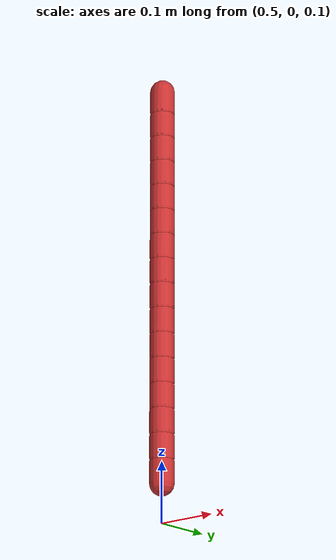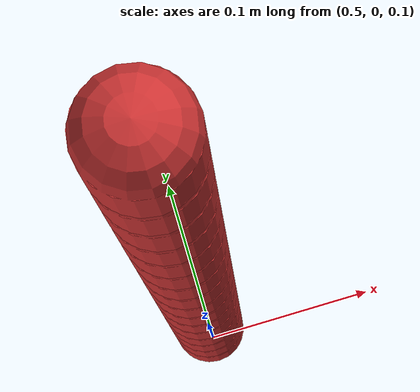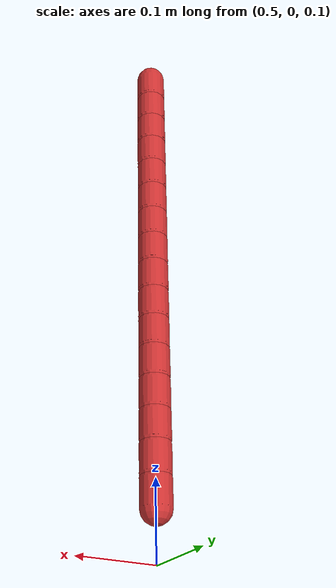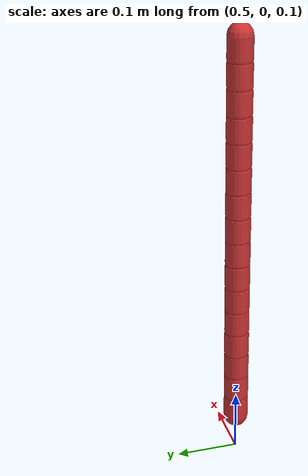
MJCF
<mujoco model="rope">

	<!-- Default settings for the model (size of capsule = 0.185) 0.035125, pos 0.0825-->
	<default>
		<default class="rope">
			<geom type="capsule" size="0.02 0.0175625" density="1140" friction="0.5" /> <!--density of Nylon-->
			<joint damping="0.1" stiffness="0.2" armature="0.01" />
		</default>
	</default>

	<!-- World body -->
	<worldbody>
		<!-- Fixed base of the DLO chain (no joint, so it remains in place) -->
		<body name="segment_0" pos="0.5 0 0.8" childclass="rope">
			<geom name="geom_0" type="capsule" rgba="0.8 0.2 0.2 1"/>
			<joint name="joint_0" type="ball" pos="0 0 0.0175625" />
			<!-- This first segment is fixed in space without a joint -->
			<!-- Chain structure for the wire with ball joints -->
			<body name="segment_1" pos="0 0 -0.04125">
				<geom name="geom_1" type="capsule" rgba="0.8 0.2 0.2 1" />
				<joint name="joint_1" type="ball" pos="0 0 0.0175625" />
				<body name="segment_2" pos="0 0 -0.04125">
					<geom name="geom_2" type="capsule" rgba="0.8 0.2 0.2 1" />
					<joint name="joint_2" type="ball" pos="0 0 0.0175625" />
					<body name="segment_3" pos="0 0 -0.04125">
						<geom name="geom_3" type="capsule" rgba="0.8 0.2 0.2 1" />
						<joint name="joint_3" type="ball" pos="0 0 0.0175625" />
						<body name="segment_4" pos="0 0 -0.04125">
							<geom name="geom_4" type="capsule" rgba="0.8 0.2 0.2 1" />
							<joint name="joint_4" type="ball" pos="0 0 0.0175625" />
							<body name="segment_5" pos="0 0 -0.04125">
								<geom name="geom_5" type="capsule" rgba="0.8 0.2 0.2 1" />
								<joint name="joint_5" type="ball" pos="0 0 0.0175625" />
								<body name="segment_6" pos="0 0 -0.04125">
									<geom name="geom_6" type="capsule" rgba="0.8 0.2 0.2 1" />
									<joint name="joint_6" type="ball" pos="0 0 0.0175625" />
									<body name="segment_7" pos="0 0 -0.04125">
										<geom name="geom_7" type="capsule" rgba="0.8 0.2 0.2 1" />
										<joint name="joint_7" type="ball" pos="0 0 0.0175625" />
										<body name="segment_8" pos="0 0 -0.04125">
											<geom name="geom_8" type="capsule" rgba="0.8 0.2 0.2 1" />
											<joint name="joint_8" type="ball" pos="0 0 0.0175625" />
											<body name="segment_9" pos="0 0 -0.04125">
												<geom name="geom_9" type="capsule" rgba="0.8 0.2 0.2 1" />
												<joint name="joint_9" type="ball" pos="0 0 0.0175625" />
												<body name="segment_10" pos="0 0 -0.04125">
													<geom name="geom_10" type="capsule" rgba="0.8 0.2 0.2 1" />
													<joint name="joint_10" type="ball" pos="0 0 0.0175625" />
													<body name="segment_11" pos="0 0 -0.04125">
														<geom name="geom_11" type="capsule" rgba="0.8 0.2 0.2 1" />
														<joint name="joint_11" type="ball" pos="0 0 0.0175625" />
														<body name="segment_12" pos="0 0 -0.04125">
															<geom name="geom_12" type="capsule" rgba="0.8 0.2 0.2 1" />
															<joint name="joint_12" type="ball" pos="0 0 0.0175625" />
															<body name="segment_13" pos="0 0 -0.04125">
																<geom name="geom_13" type="capsule" rgba="0.8 0.2 0.2 1" />
																<joint name="joint_13" type="ball" pos="0 0 0.0175625" />
																<body name="segment_14" pos="0 0 -0.04125">
																	<geom name="geom_14" type="capsule" rgba="0.8 0.2 0.2 1" />
																	<joint name="joint_14" type="ball" pos="0 0 0.0175625" />
																	<body name="segment_15" pos="0 0 -0.04125">
																		<geom name="geom_15" type="capsule" rgba="0.8 0.2 0.2 1" />
																		<joint name="joint_15" type="ball" pos="0 0 0.0175625" />
																	</body>
																</body>
															</body>
														</body>
													</body>
												</body>
											</body>
										</body>
									</body>
								</body>
							</body>
						</body>
					</body>
				</body>
			</body>
		</body>
	</worldbody>

</mujoco>
